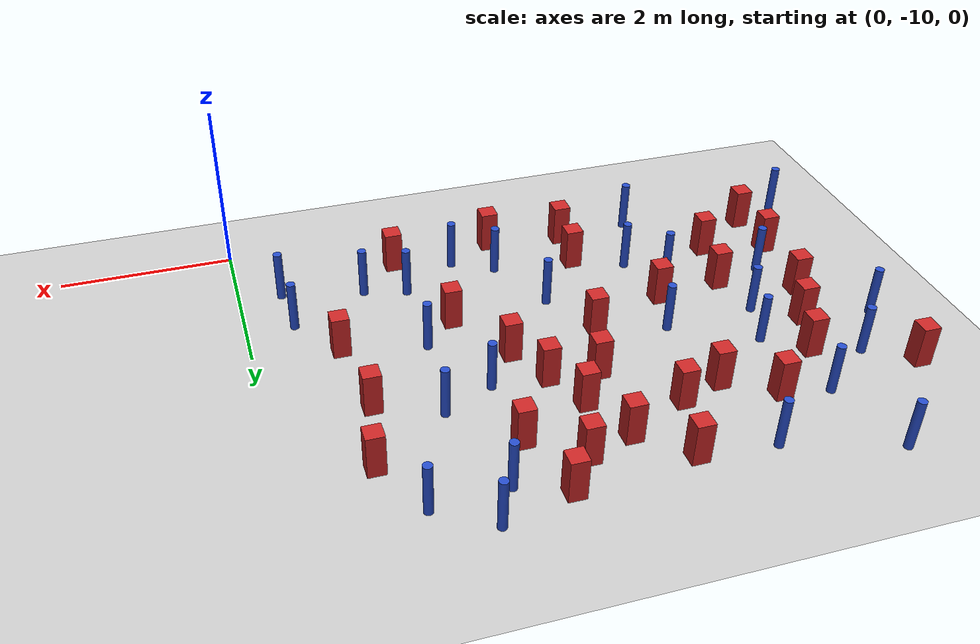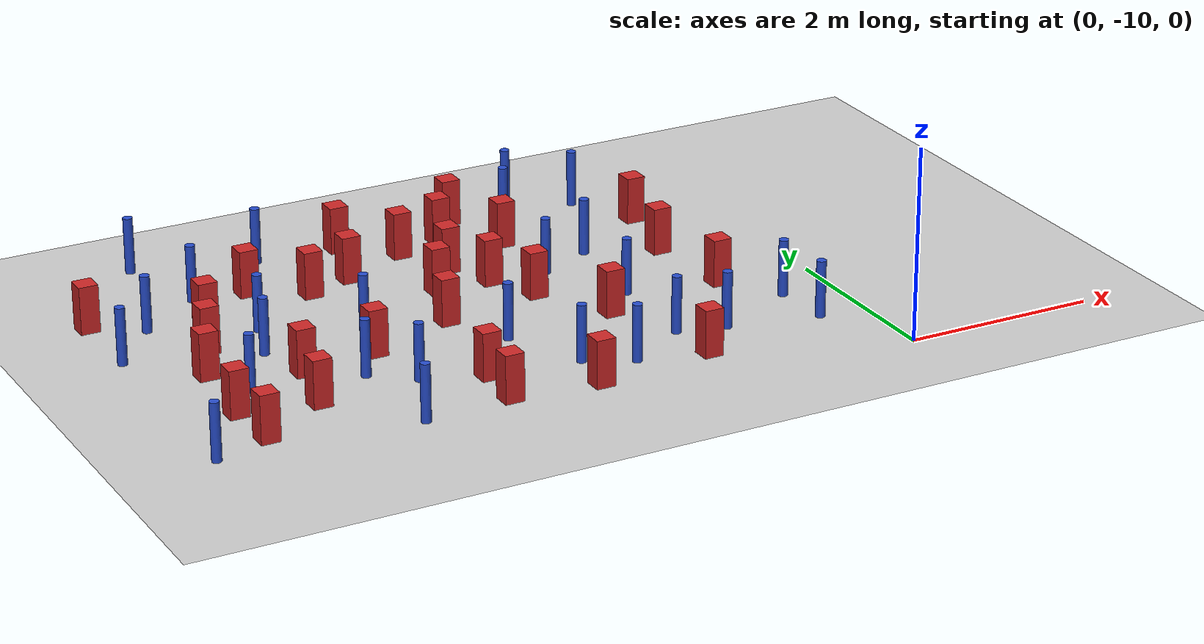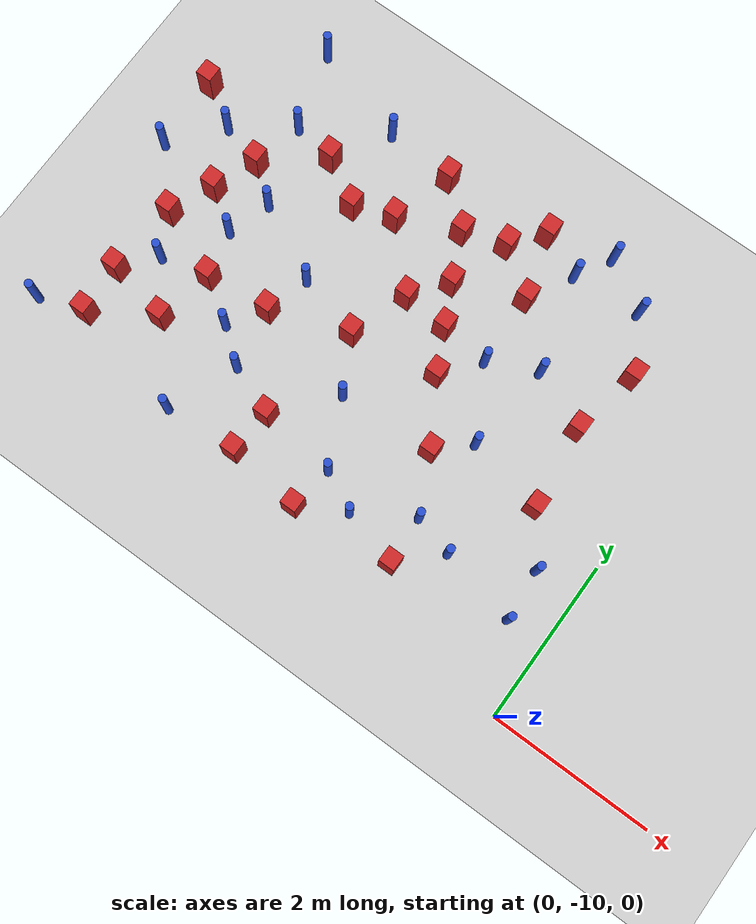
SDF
<sdf version="1.6">
 <world name="default">
  <model name="ground_plane">
   <static>1</static>
   <link name="link">
    <collision name="collision">
     <geometry><plane><normal>0 0 1</normal><size>100 100</size></plane></geometry>
     <surface><friction><ode><mu>100</mu><mu2>50</mu2></ode></friction></surface>
    </collision>
    <visual name="visual">
     <cast_shadows>0</cast_shadows>
     <geometry><plane><normal>0 0 1</normal><size>100 100</size></plane></geometry>
     <material>
      <ambient>1.0 1.0 1.0 1.0</ambient>
      <diffuse>0.8 0.8 0.8 1.0</diffuse>
      <specular>0.01 0.01 0.01 1.000000</specular>
     </material>
    </visual>
   </link>
  </model>
  <model name="pole_obstacle4">
   <static>true</static>
   <pose>-2.3665419481 -6.82564515684 7.38925637345e-09 -8.47170692798e-08 1.24976765033e-08 -1.74513093019e-07</pose>
   <link name="link">
    <pose>0 0 0.3 0 -0 0</pose>
    <inertial>
     <mass>1</mass>
     <inertia><ixx>0.145833</ixx><ixy>0</ixy><ixz>0</ixz><iyy>0.145833</iyy><iyz>0</iyz><izz>0.125</izz></inertia>
    </inertial>
    <collision name="collision">
     <geometry><cylinder><radius>0.05</radius><length>.6</length></cylinder></geometry>
    </collision>
    <visual name="visual">
     <geometry><cylinder><radius>0.05</radius><length>.6</length></cylinder></geometry>
     <material>
      <script><name>Gazebo/Blue</name><uri>file://media/materials/scripts/gazebo.material</uri></script>
     </material>
    </visual>
   </link>
  </model>
  <model name="square_post_obstacle8">
   <static>true</static>
   <pose>-4.04077362499 -9.32479479458 1.91545236811e-07 -7.35059704564e-06 1.12565212e-07 2.39332434364e-05</pose>
   <link name="link">
    <pose>0 0 0.25 0 -0 0</pose>
    <inertial>
     <mass>100</mass>
     <inertia>
      <ixx>0.166667</ixx>
      <ixy>0</ixy>
      <ixz>0</ixz>
      <iyy>0.166667</iyy>
      <iyz>0</iyz>
      <izz>0.166667</izz>
     </inertia>
    </inertial>
    <collision name="collision"><geometry><box><size>.2 .2 .5</size></box></geometry></collision>
    <visual name="visual">
     <geometry><box><size>.2 .2 .5</size></box></geometry>
     <material>
      <script><name>Gazebo/Red</name><uri>file://media/materials/scripts/gazebo.material</uri></script>
     </material>
    </visual>
   </link>
  </model>
  <model name="square_post_obstacle13">
   <static>true</static>
   <pose>-2.41554761656 -5.9415160515 1.91545236811e-07 -7.35059704564e-06 1.12565212e-07 2.39332434364e-05</pose>
   <link name="link">
    <pose>0 0 0.25 0 -0 0</pose>
    <inertial>
     <mass>100</mass>
     <inertia>
      <ixx>0.166667</ixx>
      <ixy>0</ixy>
      <ixz>0</ixz>
      <iyy>0.166667</iyy>
      <iyz>0</iyz>
      <izz>0.166667</izz>
     </inertia>
    </inertial>
    <collision name="collision"><geometry><box><size>.2 .2 .5</size></box></geometry></collision>
    <visual name="visual">
     <geometry><box><size>.2 .2 .5</size></box></geometry>
     <material>
      <script><name>Gazebo/Red</name><uri>file://media/materials/scripts/gazebo.material</uri></script>
     </material>
    </visual>
   </link>
  </model>
  <model name="pole_obstacle20">
   <static>true</static>
   <pose>-1.78473109036 -6.55529886067 7.38925637345e-09 -8.47170692799e-08 1.24976765033e-08 -1.74513093018e-07</pose>
   <link name="link">
    <pose>0 0 0.3 0 -0 0</pose>
    <inertial>
     <mass>1</mass>
     <inertia><ixx>0.145833</ixx><ixy>0</ixy><ixz>0</ixz><iyy>0.145833</iyy><iyz>0</iyz><izz>0.125</izz></inertia>
    </inertial>
    <collision name="collision">
     <geometry><cylinder><radius>0.05</radius><length>.6</length></cylinder></geometry>
    </collision>
    <visual name="visual">
     <geometry><cylinder><radius>0.05</radius><length>.6</length></cylinder></geometry>
     <material>
      <script><name>Gazebo/Blue</name><uri>file://media/materials/scripts/gazebo.material</uri></script>
     </material>
    </visual>
   </link>
  </model>
  <model name="pole_obstacle21">
   <static>true</static>
   <pose>-0.541925971555 -8.44060490971 7.38925637345e-09 -8.47170692796e-08 1.24976764704e-08 -1.74513093037e-07</pose>
   <link name="link">
    <pose>0 0 0.3 0 -0 0</pose>
    <inertial>
     <mass>1</mass>
     <inertia><ixx>0.145833</ixx><ixy>0</ixy><ixz>0</ixz><iyy>0.145833</iyy><iyz>0</iyz><izz>0.125</izz></inertia>
    </inertial>
    <collision name="collision">
     <geometry><cylinder><radius>0.05</radius><length>.6</length></cylinder></geometry>
    </collision>
    <visual name="visual">
     <geometry><cylinder><radius>0.05</radius><length>.6</length></cylinder></geometry>
     <material>
      <script><name>Gazebo/Blue</name><uri>file://media/materials/scripts/gazebo.material</uri></script>
     </material>
    </visual>
   </link>
  </model>
  <model name="pole_obstacle29">
   <static>true</static>
   <pose>-4.94553480234 -9.38782219653 7.38925637345e-09 -8.471706928e-08 1.24976765081e-08 -1.74513093015e-07</pose>
   <link name="link">
    <pose>0 0 0.3 0 -0 0</pose>
    <inertial>
     <mass>1</mass>
     <inertia><ixx>0.145833</ixx><ixy>0</ixy><ixz>0</ixz><iyy>0.145833</iyy><iyz>0</iyz><izz>0.125</izz></inertia>
    </inertial>
    <collision name="collision">
     <geometry><cylinder><radius>0.05</radius><length>.6</length></cylinder></geometry>
    </collision>
    <visual name="visual">
     <geometry><cylinder><radius>0.05</radius><length>.6</length></cylinder></geometry>
     <material>
      <script><name>Gazebo/Blue</name><uri>file://media/materials/scripts/gazebo.material</uri></script>
     </material>
    </visual>
   </link>
  </model>
  <model name="square_post_obstacle25">
   <static>true</static>
   <pose>-1.0819052715 -6.85373989763 1.91545236811e-07 -7.35059704564e-06 1.12565212e-07 2.39332434364e-05</pose>
   <link name="link">
    <pose>0 0 0.25 0 -0 0</pose>
    <inertial>
     <mass>100</mass>
     <inertia>
      <ixx>0.166667</ixx>
      <ixy>0</ixy>
      <ixz>0</ixz>
      <iyy>0.166667</iyy>
      <iyz>0</iyz>
      <izz>0.166667</izz>
     </inertia>
    </inertial>
    <collision name="collision"><geometry><box><size>.2 .2 .5</size></box></geometry></collision>
    <visual name="visual">
     <geometry><box><size>.2 .2 .5</size></box></geometry>
     <material>
      <script><name>Gazebo/Red</name><uri>file://media/materials/scripts/gazebo.material</uri></script>
     </material>
    </visual>
   </link>
  </model>
  <model name="square_post_obstacle27">
   <static>true</static>
   <pose>-3.98171700846 -5.26646219716 1.91545236811e-07 -7.35059704564e-06 1.12565212e-07 2.39332434364e-05</pose>
   <link name="link">
    <pose>0 0 0.25 0 -0 0</pose>
    <inertial>
     <mass>100</mass>
     <inertia>
      <ixx>0.166667</ixx>
      <ixy>0</ixy>
      <ixz>0</ixz>
      <iyy>0.166667</iyy>
      <iyz>0</iyz>
      <izz>0.166667</izz>
     </inertia>
    </inertial>
    <collision name="collision"><geometry><box><size>.2 .2 .5</size></box></geometry></collision>
    <visual name="visual">
     <geometry><box><size>.2 .2 .5</size></box></geometry>
     <material>
      <script><name>Gazebo/Red</name><uri>file://media/materials/scripts/gazebo.material</uri></script>
     </material>
    </visual>
   </link>
  </model>
  <model name="pole_obstacle33">
   <static>true</static>
   <pose>-4.60532413762 -8.54000767731 7.38925637345e-09 -8.471706928e-08 1.24976765081e-08 -1.74513093015e-07</pose>
   <link name="link">
    <pose>0 0 0.3 0 -0 0</pose>
    <inertial>
     <mass>1</mass>
     <inertia><ixx>0.145833</ixx><ixy>0</ixy><ixz>0</ixz><iyy>0.145833</iyy><iyz>0</iyz><izz>0.125</izz></inertia>
    </inertial>
    <collision name="collision">
     <geometry><cylinder><radius>0.05</radius><length>.6</length></cylinder></geometry>
    </collision>
    <visual name="visual">
     <geometry><cylinder><radius>0.05</radius><length>.6</length></cylinder></geometry>
     <material>
      <script><name>Gazebo/Blue</name><uri>file://media/materials/scripts/gazebo.material</uri></script>
     </material>
    </visual>
   </link>
  </model>
  <model name="pole_obstacle37">
   <static>true</static>
   <pose>-3.05493202739 -8.89045666915 7.38925637345e-09 -8.47170692799e-08 1.24976765012e-08 -1.74513093021e-07</pose>
   <link name="link">
    <pose>0 0 0.3 0 -0 0</pose>
    <inertial>
     <mass>1</mass>
     <inertia><ixx>0.145833</ixx><ixy>0</ixy><ixz>0</ixz><iyy>0.145833</iyy><iyz>0</iyz><izz>0.125</izz></inertia>
    </inertial>
    <collision name="collision">
     <geometry><cylinder><radius>0.05</radius><length>.6</length></cylinder></geometry>
    </collision>
    <visual name="visual">
     <geometry><cylinder><radius>0.05</radius><length>.6</length></cylinder></geometry>
     <material>
      <script><name>Gazebo/Blue</name><uri>file://media/materials/scripts/gazebo.material</uri></script>
     </material>
    </visual>
   </link>
  </model>
  <model name="square_post_obstacle31">
   <static>true</static>
   <pose>-2.96218364884 -5.54292597381 1.91545236811e-07 -7.35059704564e-06 1.12565212e-07 2.39332434364e-05</pose>
   <link name="link">
    <pose>0 0 0.25 0 -0 0</pose>
    <inertial>
     <mass>100</mass>
     <inertia>
      <ixx>0.166667</ixx>
      <ixy>0</ixy>
      <ixz>0</ixz>
      <iyy>0.166667</iyy>
      <iyz>0</iyz>
      <izz>0.166667</izz>
     </inertia>
    </inertial>
    <collision name="collision"><geometry><box><size>.2 .2 .5</size></box></geometry></collision>
    <visual name="visual">
     <geometry><box><size>.2 .2 .5</size></box></geometry>
     <material>
      <script><name>Gazebo/Red</name><uri>file://media/materials/scripts/gazebo.material</uri></script>
     </material>
    </visual>
   </link>
  </model>
  <model name="square_post_obstacle37">
   <static>true</static>
   <pose>-2.26824706463 -8.02581586304 1.91545236811e-07 -7.35059704564e-06 1.12565212e-07 2.39332434364e-05</pose>
   <link name="link">
    <pose>0 0 0.25 0 -0 0</pose>
    <inertial>
     <mass>100</mass>
     <inertia>
      <ixx>0.166667</ixx>
      <ixy>0</ixy>
      <ixz>0</ixz>
      <iyy>0.166667</iyy>
      <iyz>0</iyz>
      <izz>0.166667</izz>
     </inertia>
    </inertial>
    <collision name="collision"><geometry><box><size>.2 .2 .5</size></box></geometry></collision>
    <visual name="visual">
     <geometry><box><size>.2 .2 .5</size></box></geometry>
     <material>
      <script><name>Gazebo/Red</name><uri>file://media/materials/scripts/gazebo.material</uri></script>
     </material>
    </visual>
   </link>
  </model>
  <model name="square_post_obstacle38">
   <static>true</static>
   <pose>-3.13274438057 -9.43251456585 1.91545236811e-07 -7.35059704564e-06 1.12565212e-07 2.39332434364e-05</pose>
   <link name="link">
    <pose>0 0 0.25 0 -0 0</pose>
    <inertial>
     <mass>100</mass>
     <inertia>
      <ixx>0.166667</ixx>
      <ixy>0</ixy>
      <ixz>0</ixz>
      <iyy>0.166667</iyy>
      <iyz>0</iyz>
      <izz>0.166667</izz>
     </inertia>
    </inertial>
    <collision name="collision"><geometry><box><size>.2 .2 .5</size></box></geometry></collision>
    <visual name="visual">
     <geometry><box><size>.2 .2 .5</size></box></geometry>
     <material>
      <script><name>Gazebo/Red</name><uri>file://media/materials/scripts/gazebo.material</uri></script>
     </material>
    </visual>
   </link>
  </model>
  <model name="pole_obstacle58">
   <static>true</static>
   <pose>-4.8398188792 -5.19332690252 7.38925637345e-09 -8.47170692796e-08 1.24976764786e-08 -1.74513093032e-07</pose>
   <link name="link">
    <pose>0 0 0.3 0 -0 0</pose>
    <inertial>
     <mass>1</mass>
     <inertia><ixx>0.145833</ixx><ixy>0</ixy><ixz>0</ixz><iyy>0.145833</iyy><iyz>0</iyz><izz>0.125</izz></inertia>
    </inertial>
    <collision name="collision">
     <geometry><cylinder><radius>0.05</radius><length>.6</length></cylinder></geometry>
    </collision>
    <visual name="visual">
     <geometry><cylinder><radius>0.05</radius><length>.6</length></cylinder></geometry>
     <material>
      <script><name>Gazebo/Blue</name><uri>file://media/materials/scripts/gazebo.material</uri></script>
     </material>
    </visual>
   </link>
  </model>
  <model name="square_post_obstacle47">
   <static>true</static>
   <pose>-4.19797484218 -6.04023752725 1.91545236811e-07 -7.35059704564e-06 1.12565212e-07 2.39332434364e-05</pose>
   <link name="link">
    <pose>0 0 0.25 0 -0 0</pose>
    <inertial>
     <mass>100</mass>
     <inertia>
      <ixx>0.166667</ixx>
      <ixy>0</ixy>
      <ixz>0</ixz>
      <iyy>0.166667</iyy>
      <iyz>0</iyz>
      <izz>0.166667</izz>
     </inertia>
    </inertial>
    <collision name="collision"><geometry><box><size>.2 .2 .5</size></box></geometry></collision>
    <visual name="visual">
     <geometry><box><size>.2 .2 .5</size></box></geometry>
     <material>
      <script><name>Gazebo/Red</name><uri>file://media/materials/scripts/gazebo.material</uri></script>
     </material>
    </visual>
   </link>
  </model>
  <model name="pole_obstacle63">
   <static>true</static>
   <pose>-6.96341472938 -9.22967685923 7.38925637345e-09 -8.471706928e-08 1.24976765081e-08 -1.74513093015e-07</pose>
   <link name="link">
    <pose>0 0 0.3 0 -0 0</pose>
    <inertial>
     <mass>1</mass>
     <inertia><ixx>0.145833</ixx><ixy>0</ixy><ixz>0</ixz><iyy>0.145833</iyy><iyz>0</iyz><izz>0.125</izz></inertia>
    </inertial>
    <collision name="collision">
     <geometry><cylinder><radius>0.05</radius><length>.6</length></cylinder></geometry>
    </collision>
    <visual name="visual">
     <geometry><cylinder><radius>0.05</radius><length>.6</length></cylinder></geometry>
     <material>
      <script><name>Gazebo/Blue</name><uri>file://media/materials/scripts/gazebo.material</uri></script>
     </material>
    </visual>
   </link>
  </model>
  <model name="square_post_obstacle54">
   <static>true</static>
   <pose>-6.42656201466 -8.41975359808 1.91545236811e-07 -7.35059704564e-06 1.12565212e-07 2.39332434364e-05</pose>
   <link name="link">
    <pose>0 0 0.25 0 -0 0</pose>
    <inertial>
     <mass>100</mass>
     <inertia>
      <ixx>0.166667</ixx>
      <ixy>0</ixy>
      <ixz>0</ixz>
      <iyy>0.166667</iyy>
      <iyz>0</iyz>
      <izz>0.166667</izz>
     </inertia>
    </inertial>
    <collision name="collision"><geometry><box><size>.2 .2 .5</size></box></geometry></collision>
    <visual name="visual">
     <geometry><box><size>.2 .2 .5</size></box></geometry>
     <material>
      <script><name>Gazebo/Red</name><uri>file://media/materials/scripts/gazebo.material</uri></script>
     </material>
    </visual>
   </link>
  </model>
  <model name="square_post_obstacle67">
   <static>true</static>
   <pose>-2.9736464211 -6.76935813353 1.91545236811e-07 -7.35059704564e-06 1.12565212e-07 2.39332434364e-05</pose>
   <link name="link">
    <pose>0 0 0.25 0 -0 0</pose>
    <inertial>
     <mass>100</mass>
     <inertia>
      <ixx>0.166667</ixx>
      <ixy>0</ixy>
      <ixz>0</ixz>
      <iyy>0.166667</iyy>
      <iyz>0</iyz>
      <izz>0.166667</izz>
     </inertia>
    </inertial>
    <collision name="collision"><geometry><box><size>.2 .2 .5</size></box></geometry></collision>
    <visual name="visual">
     <geometry><box><size>.2 .2 .5</size></box></geometry>
     <material>
      <script><name>Gazebo/Red</name><uri>file://media/materials/scripts/gazebo.material</uri></script>
     </material>
    </visual>
   </link>
  </model>
  <model name="pole_obstacle87">
   <static>true</static>
   <pose>-5.78240382416 -5.77773057662 7.38925637345e-09 -8.47170692796e-08 1.24976764786e-08 -1.74513093032e-07</pose>
   <link name="link">
    <pose>0 0 0.3 0 -0 0</pose>
    <inertial>
     <mass>1</mass>
     <inertia><ixx>0.145833</ixx><ixy>0</ixy><ixz>0</ixz><iyy>0.145833</iyy><iyz>0</iyz><izz>0.125</izz></inertia>
    </inertial>
    <collision name="collision">
     <geometry><cylinder><radius>0.05</radius><length>.6</length></cylinder></geometry>
    </collision>
    <visual name="visual">
     <geometry><cylinder><radius>0.05</radius><length>.6</length></cylinder></geometry>
     <material>
      <script><name>Gazebo/Blue</name><uri>file://media/materials/scripts/gazebo.material</uri></script>
     </material>
    </visual>
   </link>
  </model>
  <model name="pole_obstacle90">
   <static>true</static>
   <pose>-4.57917789943 -7.24269770821 7.38925637345e-09 -8.47170692796e-08 1.24976764786e-08 -1.74513093032e-07</pose>
   <link name="link">
    <pose>0 0 0.3 0 -0 0</pose>
    <inertial>
     <mass>1</mass>
     <inertia><ixx>0.145833</ixx><ixy>0</ixy><ixz>0</ixz><iyy>0.145833</iyy><iyz>0</iyz><izz>0.125</izz></inertia>
    </inertial>
    <collision name="collision">
     <geometry><cylinder><radius>0.05</radius><length>.6</length></cylinder></geometry>
    </collision>
    <visual name="visual">
     <geometry><cylinder><radius>0.05</radius><length>.6</length></cylinder></geometry>
     <material>
      <script><name>Gazebo/Blue</name><uri>file://media/materials/scripts/gazebo.material</uri></script>
     </material>
    </visual>
   </link>
  </model>
  <model name="square_post_obstacle87">
   <static>true</static>
   <pose>-3.21400416115 -6.28745342224 1.91545236811e-07 -7.35059704564e-06 1.12565212e-07 2.39332434364e-05</pose>
   <link name="link">
    <pose>0 0 0.25 0 -0 0</pose>
    <inertial>
     <mass>100</mass>
     <inertia>
      <ixx>0.166667</ixx>
      <ixy>0</ixy>
      <ixz>0</ixz>
      <iyy>0.166667</iyy>
      <iyz>0</iyz>
      <izz>0.166667</izz>
     </inertia>
    </inertial>
    <collision name="collision"><geometry><box><size>.2 .2 .5</size></box></geometry></collision>
    <visual name="visual">
     <geometry><box><size>.2 .2 .5</size></box></geometry>
     <material>
      <script><name>Gazebo/Red</name><uri>file://media/materials/scripts/gazebo.material</uri></script>
     </material>
    </visual>
   </link>
  </model>
  <model name="square_post_obstacle89">
   <static>true</static>
   <pose>-1.89177926834 -9.31416547559 1.91545236811e-07 -7.35059704564e-06 1.12565212e-07 2.39332434364e-05</pose>
   <link name="link">
    <pose>0 0 0.25 0 -0 0</pose>
    <inertial>
     <mass>100</mass>
     <inertia>
      <ixx>0.166667</ixx>
      <ixy>0</ixy>
      <ixz>0</ixz>
      <iyy>0.166667</iyy>
      <iyz>0</iyz>
      <izz>0.166667</izz>
     </inertia>
    </inertial>
    <collision name="collision"><geometry><box><size>.2 .2 .5</size></box></geometry></collision>
    <visual name="visual">
     <geometry><box><size>.2 .2 .5</size></box></geometry>
     <material>
      <script><name>Gazebo/Red</name><uri>file://media/materials/scripts/gazebo.material</uri></script>
     </material>
    </visual>
   </link>
  </model>
  <model name="pole_obstacle100">
   <static>true</static>
   <pose>-6.4575988101 -6.27188261798 7.38925637345e-09 -8.47170692796e-08 1.24976764786e-08 -1.74513093032e-07</pose>
   <link name="link">
    <pose>0 0 0.3 0 -0 0</pose>
    <inertial>
     <mass>1</mass>
     <inertia><ixx>0.145833</ixx><ixy>0</ixy><ixz>0</ixz><iyy>0.145833</iyy><iyz>0</iyz><izz>0.125</izz></inertia>
    </inertial>
    <collision name="collision">
     <geometry><cylinder><radius>0.05</radius><length>.6</length></cylinder></geometry>
    </collision>
    <visual name="visual">
     <geometry><cylinder><radius>0.05</radius><length>.6</length></cylinder></geometry>
     <material>
      <script><name>Gazebo/Blue</name><uri>file://media/materials/scripts/gazebo.material</uri></script>
     </material>
    </visual>
   </link>
  </model>
  <model name="pole_obstacle104">
   <static>true</static>
   <pose>-2.58288433702 -9.13620689864 7.38925637345e-09 -8.47170692793e-08 1.24976764408e-08 -1.74513093041e-07</pose>
   <link name="link">
    <pose>0 0 0.3 0 -0 0</pose>
    <inertial>
     <mass>1</mass>
     <inertia><ixx>0.145833</ixx><ixy>0</ixy><ixz>0</ixz><iyy>0.145833</iyy><iyz>0</iyz><izz>0.125</izz></inertia>
    </inertial>
    <collision name="collision">
     <geometry><cylinder><radius>0.05</radius><length>.6</length></cylinder></geometry>
    </collision>
    <visual name="visual">
     <geometry><cylinder><radius>0.05</radius><length>.6</length></cylinder></geometry>
     <material>
      <script><name>Gazebo/Blue</name><uri>file://media/materials/scripts/gazebo.material</uri></script>
     </material>
    </visual>
   </link>
  </model>
  <model name="pole_obstacle106">
   <static>true</static>
   <pose>-1.27152191191 -5.31406710466 7.38925637345e-09 -8.47170692799e-08 1.24976765033e-08 -1.74513093018e-07</pose>
   <link name="link">
    <pose>0 0 0.3 0 -0 0</pose>
    <inertial>
     <mass>1</mass>
     <inertia><ixx>0.145833</ixx><ixy>0</ixy><ixz>0</ixz><iyy>0.145833</iyy><iyz>0</iyz><izz>0.125</izz></inertia>
    </inertial>
    <collision name="collision">
     <geometry><cylinder><radius>0.05</radius><length>.6</length></cylinder></geometry>
    </collision>
    <visual name="visual">
     <geometry><cylinder><radius>0.05</radius><length>.6</length></cylinder></geometry>
     <material>
      <script><name>Gazebo/Blue</name><uri>file://media/materials/scripts/gazebo.material</uri></script>
     </material>
    </visual>
   </link>
  </model>
  <model name="square_post_obstacle102">
   <static>true</static>
   <pose>-4.00072178222 -8.77772541135 1.91545236811e-07 -7.35059704564e-06 1.12565212e-07 2.39332434364e-05</pose>
   <link name="link">
    <pose>0 0 0.25 0 -0 0</pose>
    <inertial>
     <mass>100</mass>
     <inertia>
      <ixx>0.166667</ixx>
      <ixy>0</ixy>
      <ixz>0</ixz>
      <iyy>0.166667</iyy>
      <iyz>0</iyz>
      <izz>0.166667</izz>
     </inertia>
    </inertial>
    <collision name="collision"><geometry><box><size>.2 .2 .5</size></box></geometry></collision>
    <visual name="visual">
     <geometry><box><size>.2 .2 .5</size></box></geometry>
     <material>
      <script><name>Gazebo/Red</name><uri>file://media/materials/scripts/gazebo.material</uri></script>
     </material>
    </visual>
   </link>
  </model>
  <model name="square_post_obstacle106">
   <static>true</static>
   <pose>-4.7219161669 -7.79454850751 1.91545236811e-07 -7.35059704564e-06 1.12565212e-07 2.39332434364e-05</pose>
   <link name="link">
    <pose>0 0 0.25 0 -0 0</pose>
    <inertial>
     <mass>100</mass>
     <inertia>
      <ixx>0.166667</ixx>
      <ixy>0</ixy>
      <ixz>0</ixz>
      <iyy>0.166667</iyy>
      <iyz>0</iyz>
      <izz>0.166667</izz>
     </inertia>
    </inertial>
    <collision name="collision"><geometry><box><size>.2 .2 .5</size></box></geometry></collision>
    <visual name="visual">
     <geometry><box><size>.2 .2 .5</size></box></geometry>
     <material>
      <script><name>Gazebo/Red</name><uri>file://media/materials/scripts/gazebo.material</uri></script>
     </material>
    </visual>
   </link>
  </model>
  <model name="square_post_obstacle107">
   <static>true</static>
   <pose>-2.72406186982 -7.27481177769 1.91545236811e-07 -7.35059704564e-06 1.12565212e-07 2.39332434364e-05</pose>
   <link name="link">
    <pose>0 0 0.25 0 -0 0</pose>
    <inertial>
     <mass>100</mass>
     <inertia>
      <ixx>0.166667</ixx>
      <ixy>0</ixy>
      <ixz>0</ixz>
      <iyy>0.166667</iyy>
      <iyz>0</iyz>
      <izz>0.166667</izz>
     </inertia>
    </inertial>
    <collision name="collision"><geometry><box><size>.2 .2 .5</size></box></geometry></collision>
    <visual name="visual">
     <geometry><box><size>.2 .2 .5</size></box></geometry>
     <material>
      <script><name>Gazebo/Red</name><uri>file://media/materials/scripts/gazebo.material</uri></script>
     </material>
    </visual>
   </link>
  </model>
  <model name="square_post_obstacle108">
   <static>true</static>
   <pose>-3.4787256952 -5.71156478778 1.91545236811e-07 -7.35059704564e-06 1.12565212e-07 2.39332434364e-05</pose>
   <link name="link">
    <pose>0 0 0.25 0 -0 0</pose>
    <inertial>
     <mass>100</mass>
     <inertia>
      <ixx>0.166667</ixx>
      <ixy>0</ixy>
      <ixz>0</ixz>
      <iyy>0.166667</iyy>
      <iyz>0</iyz>
      <izz>0.166667</izz>
     </inertia>
    </inertial>
    <collision name="collision"><geometry><box><size>.2 .2 .5</size></box></geometry></collision>
    <visual name="visual">
     <geometry><box><size>.2 .2 .5</size></box></geometry>
     <material>
      <script><name>Gazebo/Red</name><uri>file://media/materials/scripts/gazebo.material</uri></script>
     </material>
    </visual>
   </link>
  </model>
  <model name="square_post_obstacle110">
   <static>true</static>
   <pose>-0.959295692604 -7.86106301058 1.91545236811e-07 -7.35059704564e-06 1.12565212e-07 2.39332434364e-05</pose>
   <link name="link">
    <pose>0 0 0.25 0 -0 0</pose>
    <inertial>
     <mass>100</mass>
     <inertia>
      <ixx>0.166667</ixx>
      <ixy>0</ixy>
      <ixz>0</ixz>
      <iyy>0.166667</iyy>
      <iyz>0</iyz>
      <izz>0.166667</izz>
     </inertia>
    </inertial>
    <collision name="collision"><geometry><box><size>.2 .2 .5</size></box></geometry></collision>
    <visual name="visual">
     <geometry><box><size>.2 .2 .5</size></box></geometry>
     <material>
      <script><name>Gazebo/Red</name><uri>file://media/materials/scripts/gazebo.material</uri></script>
     </material>
    </visual>
   </link>
  </model>
  <model name="square_post_obstacle111">
   <static>true</static>
   <pose>-5.65813280666 -8.58018600159 1.91545236811e-07 -7.35059704564e-06 1.12565212e-07 2.39332434364e-05</pose>
   <link name="link">
    <pose>0 0 0.25 0 -0 0</pose>
    <inertial>
     <mass>100</mass>
     <inertia>
      <ixx>0.166667</ixx>
      <ixy>0</ixy>
      <ixz>0</ixz>
      <iyy>0.166667</iyy>
      <iyz>0</iyz>
      <izz>0.166667</izz>
     </inertia>
    </inertial>
    <collision name="collision"><geometry><box><size>.2 .2 .5</size></box></geometry></collision>
    <visual name="visual">
     <geometry><box><size>.2 .2 .5</size></box></geometry>
     <material>
      <script><name>Gazebo/Red</name><uri>file://media/materials/scripts/gazebo.material</uri></script>
     </material>
    </visual>
   </link>
  </model>
  <model name="pole_obstacle116">
   <static>true</static>
   <pose>-5.01315669372 -8.21947451648 7.38925637345e-09 -8.471706928e-08 1.24976765081e-08 -1.74513093015e-07</pose>
   <link name="link">
    <pose>0 0 0.3 0 -0 0</pose>
    <inertial>
     <mass>1</mass>
     <inertia><ixx>0.145833</ixx><ixy>0</ixy><ixz>0</ixz><iyy>0.145833</iyy><iyz>0</iyz><izz>0.125</izz></inertia>
    </inertial>
    <collision name="collision">
     <geometry><cylinder><radius>0.05</radius><length>.6</length></cylinder></geometry>
    </collision>
    <visual name="visual">
     <geometry><cylinder><radius>0.05</radius><length>.6</length></cylinder></geometry>
     <material>
      <script><name>Gazebo/Blue</name><uri>file://media/materials/scripts/gazebo.material</uri></script>
     </material>
    </visual>
   </link>
  </model>
  <model name="square_post_obstacle118">
   <static>true</static>
   <pose>-6.35248534912 -7.51376374594 1.91545236811e-07 -7.35059704564e-06 1.12565212e-07 2.39332434364e-05</pose>
   <link name="link">
    <pose>0 0 0.25 0 -0 0</pose>
    <inertial>
     <mass>100</mass>
     <inertia>
      <ixx>0.166667</ixx>
      <ixy>0</ixy>
      <ixz>0</ixz>
      <iyy>0.166667</iyy>
      <iyz>0</iyz>
      <izz>0.166667</izz>
     </inertia>
    </inertial>
    <collision name="collision"><geometry><box><size>.2 .2 .5</size></box></geometry></collision>
    <visual name="visual">
     <geometry><box><size>.2 .2 .5</size></box></geometry>
     <material>
      <script><name>Gazebo/Red</name><uri>file://media/materials/scripts/gazebo.material</uri></script>
     </material>
    </visual>
   </link>
  </model>
  <model name="pole_obstacle125">
   <static>true</static>
   <pose>-5.65843947793 -7.29785016759 7.38925637345e-09 -8.47170692796e-08 1.24976764786e-08 -1.74513093032e-07</pose>
   <link name="link">
    <pose>0 0 0.3 0 -0 0</pose>
    <inertial>
     <mass>1</mass>
     <inertia><ixx>0.145833</ixx><ixy>0</ixy><ixz>0</ixz><iyy>0.145833</iyy><iyz>0</iyz><izz>0.125</izz></inertia>
    </inertial>
    <collision name="collision">
     <geometry><cylinder><radius>0.05</radius><length>.6</length></cylinder></geometry>
    </collision>
    <visual name="visual">
     <geometry><cylinder><radius>0.05</radius><length>.6</length></cylinder></geometry>
     <material>
      <script><name>Gazebo/Blue</name><uri>file://media/materials/scripts/gazebo.material</uri></script>
     </material>
    </visual>
   </link>
  </model>
  <model name="square_post_obstacle123">
   <static>true</static>
   <pose>-3.53837916294 -6.72505118949 1.91545236811e-07 -7.35059704564e-06 1.12565212e-07 2.39332434364e-05</pose>
   <link name="link">
    <pose>0 0 0.25 0 -0 0</pose>
    <inertial>
     <mass>100</mass>
     <inertia>
      <ixx>0.166667</ixx>
      <ixy>0</ixy>
      <ixz>0</ixz>
      <iyy>0.166667</iyy>
      <iyz>0</iyz>
      <izz>0.166667</izz>
     </inertia>
    </inertial>
    <collision name="collision"><geometry><box><size>.2 .2 .5</size></box></geometry></collision>
    <visual name="visual">
     <geometry><box><size>.2 .2 .5</size></box></geometry>
     <material>
      <script><name>Gazebo/Red</name><uri>file://media/materials/scripts/gazebo.material</uri></script>
     </material>
    </visual>
   </link>
  </model>
  <model name="pole_obstacle132">
   <static>true</static>
   <pose>-5.49020137708 -6.76183354817 7.38925637345e-09 -8.47170692796e-08 1.24976764786e-08 -1.74513093032e-07</pose>
   <link name="link">
    <pose>0 0 0.3 0 -0 0</pose>
    <inertial>
     <mass>1</mass>
     <inertia><ixx>0.145833</ixx><ixy>0</ixy><ixz>0</ixz><iyy>0.145833</iyy><iyz>0</iyz><izz>0.125</izz></inertia>
    </inertial>
    <collision name="collision">
     <geometry><cylinder><radius>0.05</radius><length>.6</length></cylinder></geometry>
    </collision>
    <visual name="visual">
     <geometry><cylinder><radius>0.05</radius><length>.6</length></cylinder></geometry>
     <material>
      <script><name>Gazebo/Blue</name><uri>file://media/materials/scripts/gazebo.material</uri></script>
     </material>
    </visual>
   </link>
  </model>
  <model name="pole_obstacle134">
   <static>true</static>
   <pose>-1.89711670588 -7.67024818273 7.38925637345e-09 -8.47170692799e-08 1.24976765033e-08 -1.74513093018e-07</pose>
   <link name="link">
    <pose>0 0 0.3 0 -0 0</pose>
    <inertial>
     <mass>1</mass>
     <inertia><ixx>0.145833</ixx><ixy>0</ixy><ixz>0</ixz><iyy>0.145833</iyy><iyz>0</iyz><izz>0.125</izz></inertia>
    </inertial>
    <collision name="collision">
     <geometry><cylinder><radius>0.05</radius><length>.6</length></cylinder></geometry>
    </collision>
    <visual name="visual">
     <geometry><cylinder><radius>0.05</radius><length>.6</length></cylinder></geometry>
     <material>
      <script><name>Gazebo/Blue</name><uri>file://media/materials/scripts/gazebo.material</uri></script>
     </material>
    </visual>
   </link>
  </model>
  <model name="pole_obstacle135">
   <static>true</static>
   <pose>-6.0629802074 -4.81732413831 7.38925637345e-09 -8.47170692796e-08 1.24976764786e-08 -1.74513093032e-07</pose>
   <link name="link">
    <pose>0 0 0.3 0 -0 0</pose>
    <inertial>
     <mass>1</mass>
     <inertia><ixx>0.145833</ixx><ixy>0</ixy><ixz>0</ixz><iyy>0.145833</iyy><iyz>0</iyz><izz>0.125</izz></inertia>
    </inertial>
    <collision name="collision">
     <geometry><cylinder><radius>0.05</radius><length>.6</length></cylinder></geometry>
    </collision>
    <visual name="visual">
     <geometry><cylinder><radius>0.05</radius><length>.6</length></cylinder></geometry>
     <material>
      <script><name>Gazebo/Blue</name><uri>file://media/materials/scripts/gazebo.material</uri></script>
     </material>
    </visual>
   </link>
  </model>
  <model name="pole_obstacle137">
   <static>true</static>
   <pose>-1.92322650693 -8.72785589009 7.38925637345e-09 -8.47170692798e-08 1.24976764881e-08 -1.74513093027e-07</pose>
   <link name="link">
    <pose>0 0 0.3 0 -0 0</pose>
    <inertial>
     <mass>1</mass>
     <inertia><ixx>0.145833</ixx><ixy>0</ixy><ixz>0</ixz><iyy>0.145833</iyy><iyz>0</iyz><izz>0.125</izz></inertia>
    </inertial>
    <collision name="collision">
     <geometry><cylinder><radius>0.05</radius><length>.6</length></cylinder></geometry>
    </collision>
    <visual name="visual">
     <geometry><cylinder><radius>0.05</radius><length>.6</length></cylinder></geometry>
     <material>
      <script><name>Gazebo/Blue</name><uri>file://media/materials/scripts/gazebo.material</uri></script>
     </material>
    </visual>
   </link>
  </model>
  <model name="square_post_obstacle138">
   <static>true</static>
   <pose>-5.90988928231 -6.43451611156 1.91545236811e-07 -7.35059704564e-06 1.12565212e-07 2.39332434364e-05</pose>
   <link name="link">
    <pose>0 0 0.25 0 -0 0</pose>
    <inertial>
     <mass>100</mass>
     <inertia>
      <ixx>0.166667</ixx>
      <ixy>0</ixy>
      <ixz>0</ixz>
      <iyy>0.166667</iyy>
      <iyz>0</iyz>
      <izz>0.166667</izz>
     </inertia>
    </inertial>
    <collision name="collision"><geometry><box><size>.2 .2 .5</size></box></geometry></collision>
    <visual name="visual">
     <geometry><box><size>.2 .2 .5</size></box></geometry>
     <material>
      <script><name>Gazebo/Red</name><uri>file://media/materials/scripts/gazebo.material</uri></script>
     </material>
    </visual>
   </link>
  </model>
  <model name="square_post_obstacle140">
   <static>true</static>
   <pose>-2.65208824407 -5.1503027621 1.91545236811e-07 -7.35059704564e-06 1.12565212e-07 2.39332434364e-05</pose>
   <link name="link">
    <pose>0 0 0.25 0 -0 0</pose>
    <inertial>
     <mass>100</mass>
     <inertia>
      <ixx>0.166667</ixx>
      <ixy>0</ixy>
      <ixz>0</ixz>
      <iyy>0.166667</iyy>
      <iyz>0</iyz>
      <izz>0.166667</izz>
     </inertia>
    </inertial>
    <collision name="collision"><geometry><box><size>.2 .2 .5</size></box></geometry></collision>
    <visual name="visual">
     <geometry><box><size>.2 .2 .5</size></box></geometry>
     <material>
      <script><name>Gazebo/Red</name><uri>file://media/materials/scripts/gazebo.material</uri></script>
     </material>
    </visual>
   </link>
  </model>
  <model name="pole_obstacle146">
   <static>true</static>
   <pose>-3.43744700833 -8.09581285096 7.38925637345e-09 -8.47170692793e-08 1.24976764408e-08 -1.74513093041e-07</pose>
   <link name="link">
    <pose>0 0 0.3 0 -0 0</pose>
    <inertial>
     <mass>1</mass>
     <inertia><ixx>0.145833</ixx><ixy>0</ixy><ixz>0</ixz><iyy>0.145833</iyy><iyz>0</iyz><izz>0.125</izz></inertia>
    </inertial>
    <collision name="collision">
     <geometry><cylinder><radius>0.05</radius><length>.6</length></cylinder></geometry>
    </collision>
    <visual name="visual">
     <geometry><cylinder><radius>0.05</radius><length>.6</length></cylinder></geometry>
     <material>
      <script><name>Gazebo/Blue</name><uri>file://media/materials/scripts/gazebo.material</uri></script>
     </material>
    </visual>
   </link>
  </model>
  <model name="pole_obstacle147">
   <static>true</static>
   <pose>-1.43443886873 -8.86299373668 7.38925637345e-09 -8.47170692798e-08 1.24976764881e-08 -1.74513093027e-07</pose>
   <link name="link">
    <pose>0 0 0.3 0 -0 0</pose>
    <inertial>
     <mass>1</mass>
     <inertia><ixx>0.145833</ixx><ixy>0</ixy><ixz>0</ixz><iyy>0.145833</iyy><iyz>0</iyz><izz>0.125</izz></inertia>
    </inertial>
    <collision name="collision">
     <geometry><cylinder><radius>0.05</radius><length>.6</length></cylinder></geometry>
    </collision>
    <visual name="visual">
     <geometry><cylinder><radius>0.05</radius><length>.6</length></cylinder></geometry>
     <material>
      <script><name>Gazebo/Blue</name><uri>file://media/materials/scripts/gazebo.material</uri></script>
     </material>
    </visual>
   </link>
  </model>
  <model name="pole_obstacle148">
   <static>true</static>
   <pose>-2.11600491115 -5.38058019413 7.38925637345e-09 -8.47170692798e-08 1.24976765033e-08 -1.74513093019e-07</pose>
   <link name="link">
    <pose>0 0 0.3 0 -0 0</pose>
    <inertial>
     <mass>1</mass>
     <inertia><ixx>0.145833</ixx><ixy>0</ixy><ixz>0</ixz><iyy>0.145833</iyy><iyz>0</iyz><izz>0.125</izz></inertia>
    </inertial>
    <collision name="collision">
     <geometry><cylinder><radius>0.05</radius><length>.6</length></cylinder></geometry>
    </collision>
    <visual name="visual">
     <geometry><cylinder><radius>0.05</radius><length>.6</length></cylinder></geometry>
     <material>
      <script><name>Gazebo/Blue</name><uri>file://media/materials/scripts/gazebo.material</uri></script>
     </material>
    </visual>
   </link>
  </model>
  <model name="pole_obstacle160">
   <static>true</static>
   <pose>-0.489726712149 -9.06526454086 7.38925637345e-09 -8.47170692799e-08 1.24976764918e-08 -1.74513093025e-07</pose>
   <link name="link">
    <pose>0 0 0.3 0 -0 0</pose>
    <inertial>
     <mass>1</mass>
     <inertia><ixx>0.145833</ixx><ixy>0</ixy><ixz>0</ixz><iyy>0.145833</iyy><iyz>0</iyz><izz>0.125</izz></inertia>
    </inertial>
    <collision name="collision">
     <geometry><cylinder><radius>0.05</radius><length>.6</length></cylinder></geometry>
    </collision>
    <visual name="visual">
     <geometry><cylinder><radius>0.05</radius><length>.6</length></cylinder></geometry>
     <material>
      <script><name>Gazebo/Blue</name><uri>file://media/materials/scripts/gazebo.material</uri></script>
     </material>
    </visual>
   </link>
  </model>
  <model name="square_post_obstacle154">
   <static>true</static>
   <pose>-0.917827308113 -5.98740347986 1.91545236811e-07 -7.35059704564e-06 1.12565212e-07 2.39332434364e-05</pose>
   <link name="link">
    <pose>0 0 0.25 0 -0 0</pose>
    <inertial>
     <mass>100</mass>
     <inertia>
      <ixx>0.166667</ixx>
      <ixy>0</ixy>
      <ixz>0</ixz>
      <iyy>0.166667</iyy>
      <iyz>0</iyz>
      <izz>0.166667</izz>
     </inertia>
    </inertial>
    <collision name="collision"><geometry><box><size>.2 .2 .5</size></box></geometry></collision>
    <visual name="visual">
     <geometry><box><size>.2 .2 .5</size></box></geometry>
     <material>
      <script><name>Gazebo/Red</name><uri>file://media/materials/scripts/gazebo.material</uri></script>
     </material>
    </visual>
   </link>
  </model>
  <model name="square_post_obstacle162">
   <static>true</static>
   <pose>-6.95518454872 -5.95499332574 1.91545236811e-07 -7.35059704564e-06 1.12565212e-07 2.39332434364e-05</pose>
   <link name="link">
    <pose>0 0 0.25 0 -0 0</pose>
    <inertial>
     <mass>100</mass>
     <inertia>
      <ixx>0.166667</ixx>
      <ixy>0</ixy>
      <ixz>0</ixz>
      <iyy>0.166667</iyy>
      <iyz>0</iyz>
      <izz>0.166667</izz>
     </inertia>
    </inertial>
    <collision name="collision"><geometry><box><size>.2 .2 .5</size></box></geometry></collision>
    <visual name="visual">
     <geometry><box><size>.2 .2 .5</size></box></geometry>
     <material>
      <script><name>Gazebo/Red</name><uri>file://media/materials/scripts/gazebo.material</uri></script>
     </material>
    </visual>
   </link>
  </model>
  <model name="pole_obstacle174">
   <static>true</static>
   <pose>-6.94759351897 -6.87071323894 7.38925637345e-09 -8.47170692796e-08 1.24976764786e-08 -1.74513093032e-07</pose>
   <link name="link">
    <pose>0 0 0.3 0 -0 0</pose>
    <inertial>
     <mass>1</mass>
     <inertia><ixx>0.145833</ixx><ixy>0</ixy><ixz>0</ixz><iyy>0.145833</iyy><iyz>0</iyz><izz>0.125</izz></inertia>
    </inertial>
    <collision name="collision">
     <geometry><cylinder><radius>0.05</radius><length>.6</length></cylinder></geometry>
    </collision>
    <visual name="visual">
     <geometry><cylinder><radius>0.05</radius><length>.6</length></cylinder></geometry>
     <material>
      <script><name>Gazebo/Blue</name><uri>file://media/materials/scripts/gazebo.material</uri></script>
     </material>
    </visual>
   </link>
  </model>
  <model name="square_post_obstacle177">
   <static>true</static>
   <pose>-3.78689329998 -7.45318006919 1.91545236811e-07 -7.35059704564e-06 1.12565212e-07 2.39332434364e-05</pose>
   <link name="link">
    <pose>0 0 0.25 0 -0 0</pose>
    <inertial>
     <mass>100</mass>
     <inertia>
      <ixx>0.166667</ixx>
      <ixy>0</ixy>
      <ixz>0</ixz>
      <iyy>0.166667</iyy>
      <iyz>0</iyz>
      <izz>0.166667</izz>
     </inertia>
    </inertial>
    <collision name="collision"><geometry><box><size>.2 .2 .5</size></box></geometry></collision>
    <visual name="visual">
     <geometry><box><size>.2 .2 .5</size></box></geometry>
     <material>
      <script><name>Gazebo/Red</name><uri>file://media/materials/scripts/gazebo.material</uri></script>
     </material>
    </visual>
   </link>
  </model>
  <model name="pole_obstacle181">
   <static>true</static>
   <pose>-1.87099959264 -4.94218426676 7.38925637345e-09 -8.47170692799e-08 1.24976765033e-08 -1.74513093018e-07</pose>
   <link name="link">
    <pose>0 0 0.3 0 -0 0</pose>
    <inertial>
     <mass>1</mass>
     <inertia><ixx>0.145833</ixx><ixy>0</ixy><ixz>0</ixz><iyy>0.145833</iyy><iyz>0</iyz><izz>0.125</izz></inertia>
    </inertial>
    <collision name="collision">
     <geometry><cylinder><radius>0.05</radius><length>.6</length></cylinder></geometry>
    </collision>
    <visual name="visual">
     <geometry><cylinder><radius>0.05</radius><length>.6</length></cylinder></geometry>
     <material>
      <script><name>Gazebo/Blue</name><uri>file://media/materials/scripts/gazebo.material</uri></script>
     </material>
    </visual>
   </link>
  </model>
  <model name="square_post_obstacle198">
   <static>true</static>
   <pose>-5.24165938279 -5.87624744341 1.91545236811e-07 -7.35059704564e-06 1.12565212e-07 2.39332434364e-05</pose>
   <link name="link">
    <pose>0 0 0.25 0 -0 0</pose>
    <inertial>
     <mass>100</mass>
     <inertia>
      <ixx>0.166667</ixx>
      <ixy>0</ixy>
      <ixz>0</ixz>
      <iyy>0.166667</iyy>
      <iyz>0</iyz>
      <izz>0.166667</izz>
     </inertia>
    </inertial>
    <collision name="collision"><geometry><box><size>.2 .2 .5</size></box></geometry></collision>
    <visual name="visual">
     <geometry><box><size>.2 .2 .5</size></box></geometry>
     <material>
      <script><name>Gazebo/Red</name><uri>file://media/materials/scripts/gazebo.material</uri></script>
     </material>
    </visual>
   </link>
  </model>
  <model name="square_post_obstacle201">
   <static>true</static>
   <pose>-6.38804981054 -9.03696729167 1.91545236811e-07 -7.35059704564e-06 1.12565212e-07 2.39332434364e-05</pose>
   <link name="link">
    <pose>0 0 0.25 0 -0 0</pose>
    <inertial>
     <mass>100</mass>
     <inertia>
      <ixx>0.166667</ixx>
      <ixy>0</ixy>
      <ixz>0</ixz>
      <iyy>0.166667</iyy>
      <iyz>0</iyz>
      <izz>0.166667</izz>
     </inertia>
    </inertial>
    <collision name="collision"><geometry><box><size>.2 .2 .5</size></box></geometry></collision>
    <visual name="visual">
     <geometry><box><size>.2 .2 .5</size></box></geometry>
     <material>
      <script><name>Gazebo/Red</name><uri>file://media/materials/scripts/gazebo.material</uri></script>
     </material>
    </visual>
   </link>
  </model>
  <model name="pole_obstacle198">
   <static>true</static>
   <pose>-6.10886881754 -8.01182661791 7.38925637345e-09 -8.47170692796e-08 1.24976764734e-08 -1.74513093037e-07</pose>
   <link name="link">
    <pose>0 0 0.3 0 -0 0</pose>
    <inertial>
     <mass>1</mass>
     <inertia><ixx>0.145833</ixx><ixy>0</ixy><ixz>0</ixz><iyy>0.145833</iyy><iyz>0</iyz><izz>0.125</izz></inertia>
    </inertial>
    <collision name="collision">
     <geometry><cylinder><radius>0.05</radius><length>.6</length></cylinder></geometry>
    </collision>
    <visual name="visual">
     <geometry><cylinder><radius>0.05</radius><length>.6</length></cylinder></geometry>
     <material>
      <script><name>Gazebo/Blue</name><uri>file://media/materials/scripts/gazebo.material</uri></script>
     </material>
    </visual>
   </link>
  </model>
  <model name="square_post_obstacle207">
   <static>true</static>
   <pose>-6.11788123891 -6.97384841665 1.91545236811e-07 -7.35059704564e-06 1.12565212e-07 2.39332434364e-05</pose>
   <link name="link">
    <pose>0 0 0.25 0 -0 0</pose>
    <inertial>
     <mass>100</mass>
     <inertia>
      <ixx>0.166667</ixx>
      <ixy>0</ixy>
      <ixz>0</ixz>
      <iyy>0.166667</iyy>
      <iyz>0</iyz>
      <izz>0.166667</izz>
     </inertia>
    </inertial>
    <collision name="collision"><geometry><box><size>.2 .2 .5</size></box></geometry></collision>
    <visual name="visual">
     <geometry><box><size>.2 .2 .5</size></box></geometry>
     <material>
      <script><name>Gazebo/Red</name><uri>file://media/materials/scripts/gazebo.material</uri></script>
     </material>
    </visual>
   </link>
  </model>
  <model name="square_post_obstacle212">
   <static>true</static>
   <pose>-4.69022249488 -6.21103624596 1.91545236811e-07 -7.35059704564e-06 1.12565212e-07 2.39332434364e-05</pose>
   <link name="link">
    <pose>0 0 0.25 0 -0 0</pose>
    <inertial>
     <mass>100</mass>
     <inertia>
      <ixx>0.166667</ixx>
      <ixy>0</ixy>
      <ixz>0</ixz>
      <iyy>0.166667</iyy>
      <iyz>0</iyz>
      <izz>0.166667</izz>
     </inertia>
    </inertial>
    <collision name="collision"><geometry><box><size>.2 .2 .5</size></box></geometry></collision>
    <visual name="visual">
     <geometry><box><size>.2 .2 .5</size></box></geometry>
     <material>
      <script><name>Gazebo/Red</name><uri>file://media/materials/scripts/gazebo.material</uri></script>
     </material>
    </visual>
   </link>
  </model>
  <model name="square_post_obstacle217">
   <static>true</static>
   <pose>-5.51211424478 -7.8758798309 1.91545236811e-07 -7.35059704564e-06 1.12565212e-07 2.39332434364e-05</pose>
   <link name="link">
    <pose>0 0 0.25 0 -0 0</pose>
    <inertial>
     <mass>100</mass>
     <inertia>
      <ixx>0.166667</ixx>
      <ixy>0</ixy>
      <ixz>0</ixz>
      <iyy>0.166667</iyy>
      <iyz>0</iyz>
      <izz>0.166667</izz>
     </inertia>
    </inertial>
    <collision name="collision"><geometry><box><size>.2 .2 .5</size></box></geometry></collision>
    <visual name="visual">
     <geometry><box><size>.2 .2 .5</size></box></geometry>
     <material>
      <script><name>Gazebo/Red</name><uri>file://media/materials/scripts/gazebo.material</uri></script>
     </material>
    </visual>
   </link>
  </model>
 </world>
</sdf>
